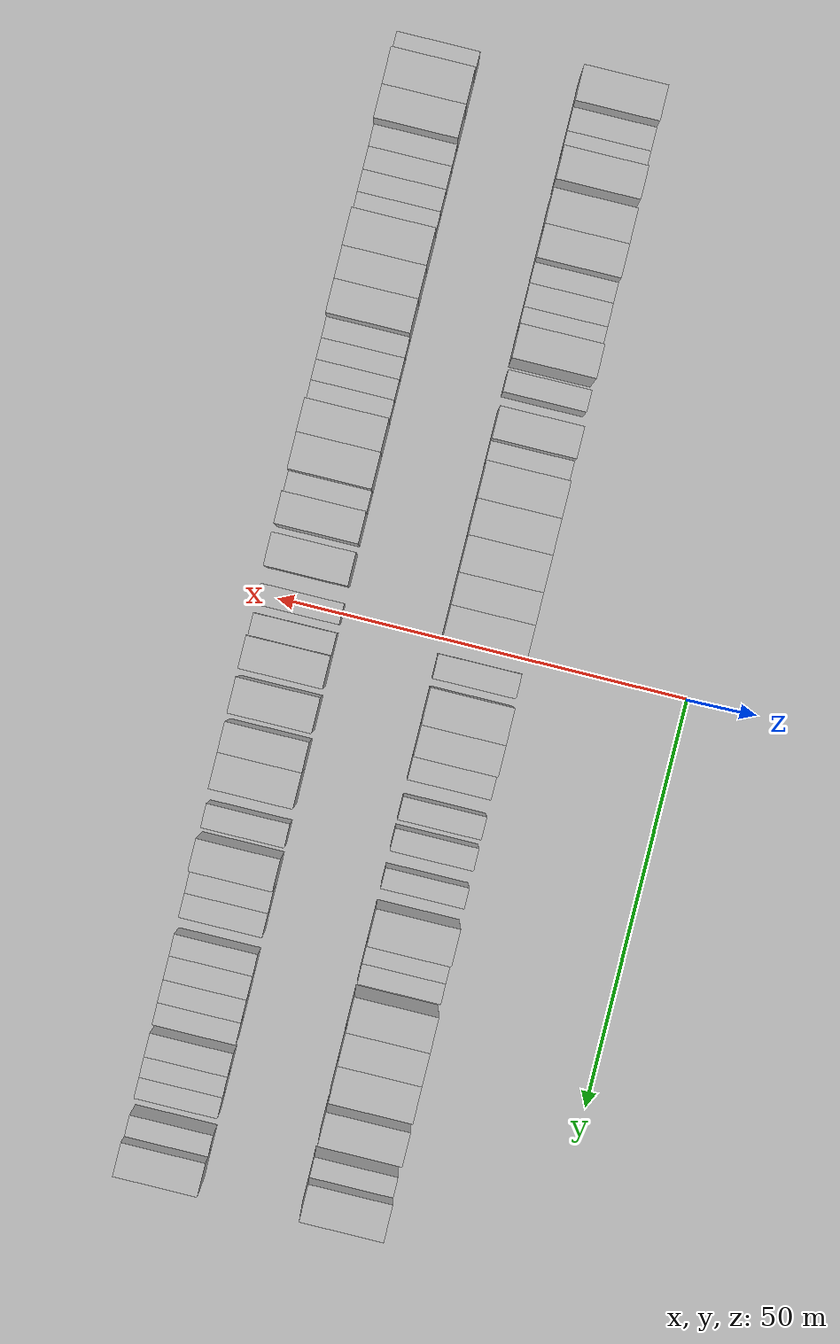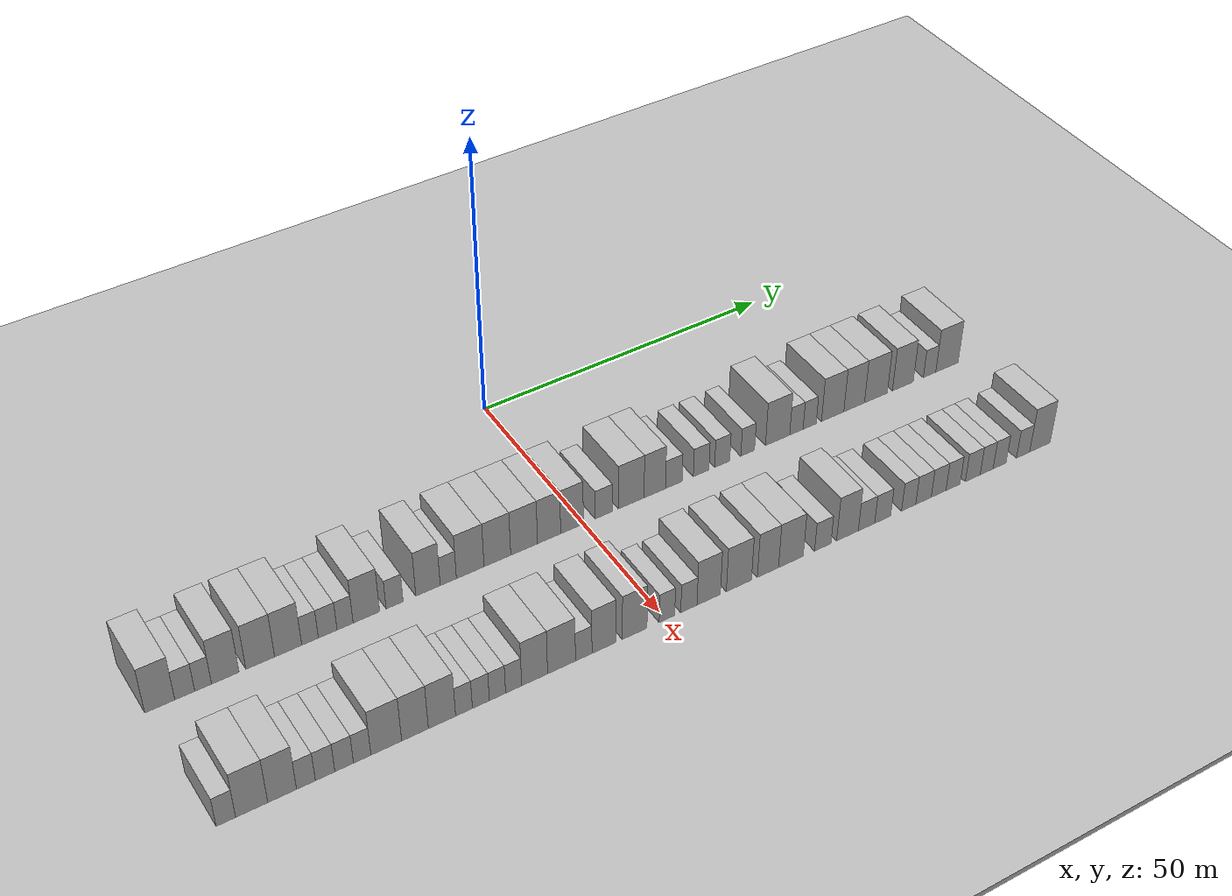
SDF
<sdf version="1.6">
 <world name="default">
  <include><name>ground_plane_1</name><uri>model://HANNAS_ground_plane</uri></include>
  <include>
   <name>ground_plane_2</name>
   <uri>model://HANNAS_ground_plane</uri>
   <pose>100 0 0  0 0 0</pose>
  </include>
  <model name="building_37">
   <static>1</static>
   <pose>25.0000 -65.7747 0 0.000000 0.000000 0.000000</pose>
   <link name="link">
    <pose>0 0 4.50 0 0 0</pose>
    <collision name="collision"><geometry><box><size>10.0000 4.2623 9.0000</size></box></geometry></collision>
    <visual name="visual">
     <cast_shadows>0</cast_shadows>
     <geometry><box><size>10.0000 4.2623 9.0000</size></box></geometry>
     <material>
      <script>
       <uri>model://HANNAS_wall/materials/scripts</uri>
       <uri>model://HANNAS_wall/materials/textures</uri>
       <name>vrc/HANNAS_wall</name>
      </script>
     </material>
    </visual>
   </link>
  </model>
  <model name="building_38">
   <static>1</static>
   <pose>25.0000 -62.2208 0 0.000000 0.000000 0.000000</pose>
   <link name="link">
    <pose>0 0 3.00 0 0 0</pose>
    <collision name="collision"><geometry><box><size>10.0000 2.8455 6.0000</size></box></geometry></collision>
    <visual name="visual">
     <cast_shadows>0</cast_shadows>
     <geometry><box><size>10.0000 2.8455 6.0000</size></box></geometry>
     <material>
      <script>
       <uri>model://HANNAS_wall/materials/scripts</uri>
       <uri>model://HANNAS_wall/materials/textures</uri>
       <name>vrc/HANNAS_wall</name>
      </script>
     </material>
    </visual>
   </link>
  </model>
  <model name="building_39">
   <static>1</static>
   <pose>25.0000 -59.5873 0 0.000000 0.000000 0.000000</pose>
   <link name="link">
    <pose>0 0 3.00 0 0 0</pose>
    <collision name="collision"><geometry><box><size>10.0000 2.4215 6.0000</size></box></geometry></collision>
    <visual name="visual">
     <cast_shadows>0</cast_shadows>
     <geometry><box><size>10.0000 2.4215 6.0000</size></box></geometry>
     <material>
      <script>
       <uri>model://HANNAS_wall/materials/scripts</uri>
       <uri>model://HANNAS_wall/materials/textures</uri>
       <name>vrc/HANNAS_wall</name>
      </script>
     </material>
    </visual>
   </link>
  </model>
  <model name="building_40">
   <static>1</static>
   <pose>25.0000 -56.3808 0 0.000000 0.000000 0.000000</pose>
   <link name="link">
    <pose>0 0 4.50 0 0 0</pose>
    <collision name="collision"><geometry><box><size>10.0000 3.9916 9.0000</size></box></geometry></collision>
    <visual name="visual">
     <cast_shadows>0</cast_shadows>
     <geometry><box><size>10.0000 3.9916 9.0000</size></box></geometry>
     <material>
      <script>
       <uri>model://HANNAS_wall/materials/scripts</uri>
       <uri>model://HANNAS_wall/materials/textures</uri>
       <name>vrc/HANNAS_wall</name>
      </script>
     </material>
    </visual>
   </link>
  </model>
  <model name="building_41">
   <static>1</static>
   <pose>25.0000 -51.2658 0 0.000000 0.000000 0.000000</pose>
   <link name="link">
    <pose>0 0 4.50 0 0 0</pose>
    <collision name="collision"><geometry><box><size>10.0000 4.2384 9.0000</size></box></geometry></collision>
    <visual name="visual">
     <cast_shadows>0</cast_shadows>
     <geometry><box><size>10.0000 4.2384 9.0000</size></box></geometry>
     <material>
      <script>
       <uri>model://HANNAS_wall/materials/scripts</uri>
       <uri>model://HANNAS_wall/materials/textures</uri>
       <name>vrc/HANNAS_wall</name>
      </script>
     </material>
    </visual>
   </link>
  </model>
  <model name="building_42">
   <static>1</static>
   <pose>25.0000 -47.1261 0 0.000000 0.000000 0.000000</pose>
   <link name="link">
    <pose>0 0 4.50 0 0 0</pose>
    <collision name="collision"><geometry><box><size>10.0000 4.0411 9.0000</size></box></geometry></collision>
    <visual name="visual">
     <cast_shadows>0</cast_shadows>
     <geometry><box><size>10.0000 4.0411 9.0000</size></box></geometry>
     <material>
      <script>
       <uri>model://HANNAS_wall/materials/scripts</uri>
       <uri>model://HANNAS_wall/materials/textures</uri>
       <name>vrc/HANNAS_wall</name>
      </script>
     </material>
    </visual>
   </link>
  </model>
  <model name="building_43">
   <static>1</static>
   <pose>25.0000 -43.8593 0 0.000000 0.000000 0.000000</pose>
   <link name="link">
    <pose>0 0 3.00 0 0 0</pose>
    <collision name="collision"><geometry><box><size>10.0000 2.4925 6.0000</size></box></geometry></collision>
    <visual name="visual">
     <cast_shadows>0</cast_shadows>
     <geometry><box><size>10.0000 2.4925 6.0000</size></box></geometry>
     <material>
      <script>
       <uri>model://HANNAS_wall/materials/scripts</uri>
       <uri>model://HANNAS_wall/materials/textures</uri>
       <name>vrc/HANNAS_wall</name>
      </script>
     </material>
    </visual>
   </link>
  </model>
  <model name="building_44">
   <static>1</static>
   <pose>25.0000 -41.1967 0 0.000000 0.000000 0.000000</pose>
   <link name="link">
    <pose>0 0 3.00 0 0 0</pose>
    <collision name="collision"><geometry><box><size>10.0000 2.8325 6.0000</size></box></geometry></collision>
    <visual name="visual">
     <cast_shadows>0</cast_shadows>
     <geometry><box><size>10.0000 2.8325 6.0000</size></box></geometry>
     <material>
      <script>
       <uri>model://HANNAS_wall/materials/scripts</uri>
       <uri>model://HANNAS_wall/materials/textures</uri>
       <name>vrc/HANNAS_wall</name>
      </script>
     </material>
    </visual>
   </link>
  </model>
  <model name="building_45">
   <static>1</static>
   <pose>25.0000 -38.5544 0 0.000000 0.000000 0.000000</pose>
   <link name="link">
    <pose>0 0 3.00 0 0 0</pose>
    <collision name="collision"><geometry><box><size>10.0000 2.4520 6.0000</size></box></geometry></collision>
    <visual name="visual">
     <cast_shadows>0</cast_shadows>
     <geometry><box><size>10.0000 2.4520 6.0000</size></box></geometry>
     <material>
      <script>
       <uri>model://HANNAS_wall/materials/scripts</uri>
       <uri>model://HANNAS_wall/materials/textures</uri>
       <name>vrc/HANNAS_wall</name>
      </script>
     </material>
    </visual>
   </link>
  </model>
  <model name="building_46">
   <static>1</static>
   <pose>25.0000 -35.2823 0 0.000000 0.000000 0.000000</pose>
   <link name="link">
    <pose>0 0 4.50 0 0 0</pose>
    <collision name="collision"><geometry><box><size>10.0000 4.0922 9.0000</size></box></geometry></collision>
    <visual name="visual">
     <cast_shadows>0</cast_shadows>
     <geometry><box><size>10.0000 4.0922 9.0000</size></box></geometry>
     <material>
      <script>
       <uri>model://HANNAS_wall/materials/scripts</uri>
       <uri>model://HANNAS_wall/materials/textures</uri>
       <name>vrc/HANNAS_wall</name>
      </script>
     </material>
    </visual>
   </link>
  </model>
  <model name="building_47">
   <static>1</static>
   <pose>25.0000 -30.9159 0 0.000000 0.000000 0.000000</pose>
   <link name="link">
    <pose>0 0 3.00 0 0 0</pose>
    <collision name="collision"><geometry><box><size>10.0000 2.6406 6.0000</size></box></geometry></collision>
    <visual name="visual">
     <cast_shadows>0</cast_shadows>
     <geometry><box><size>10.0000 2.6406 6.0000</size></box></geometry>
     <material>
      <script>
       <uri>model://HANNAS_wall/materials/scripts</uri>
       <uri>model://HANNAS_wall/materials/textures</uri>
       <name>vrc/HANNAS_wall</name>
      </script>
     </material>
    </visual>
   </link>
  </model>
  <model name="building_48">
   <static>1</static>
   <pose>25.0000 -25.6703 0 0.000000 0.000000 0.000000</pose>
   <link name="link">
    <pose>0 0 4.50 0 0 0</pose>
    <collision name="collision"><geometry><box><size>10.0000 3.8506 9.0000</size></box></geometry></collision>
    <visual name="visual">
     <cast_shadows>0</cast_shadows>
     <geometry><box><size>10.0000 3.8506 9.0000</size></box></geometry>
     <material>
      <script>
       <uri>model://HANNAS_wall/materials/scripts</uri>
       <uri>model://HANNAS_wall/materials/textures</uri>
       <name>vrc/HANNAS_wall</name>
      </script>
     </material>
    </visual>
   </link>
  </model>
  <model name="building_49">
   <static>1</static>
   <pose>25.0000 -22.4539 0 0.000000 0.000000 0.000000</pose>
   <link name="link">
    <pose>0 0 3.00 0 0 0</pose>
    <collision name="collision"><geometry><box><size>10.0000 2.5822 6.0000</size></box></geometry></collision>
    <visual name="visual">
     <cast_shadows>0</cast_shadows>
     <geometry><box><size>10.0000 2.5822 6.0000</size></box></geometry>
     <material>
      <script>
       <uri>model://HANNAS_wall/materials/scripts</uri>
       <uri>model://HANNAS_wall/materials/textures</uri>
       <name>vrc/HANNAS_wall</name>
      </script>
     </material>
    </visual>
   </link>
  </model>
  <model name="building_50">
   <static>1</static>
   <pose>25.0000 -18.9364 0 0.000000 0.000000 0.000000</pose>
   <link name="link">
    <pose>0 0 4.50 0 0 0</pose>
    <collision name="collision"><geometry><box><size>10.0000 4.4528 9.0000</size></box></geometry></collision>
    <visual name="visual">
     <cast_shadows>0</cast_shadows>
     <geometry><box><size>10.0000 4.4528 9.0000</size></box></geometry>
     <material>
      <script>
       <uri>model://HANNAS_wall/materials/scripts</uri>
       <uri>model://HANNAS_wall/materials/textures</uri>
       <name>vrc/HANNAS_wall</name>
      </script>
     </material>
    </visual>
   </link>
  </model>
  <model name="building_51">
   <static>1</static>
   <pose>25.0000 -14.5381 0 0.000000 0.000000 0.000000</pose>
   <link name="link">
    <pose>0 0 4.50 0 0 0</pose>
    <collision name="collision"><geometry><box><size>10.0000 4.3439 9.0000</size></box></geometry></collision>
    <visual name="visual">
     <cast_shadows>0</cast_shadows>
     <geometry><box><size>10.0000 4.3439 9.0000</size></box></geometry>
     <material>
      <script>
       <uri>model://HANNAS_wall/materials/scripts</uri>
       <uri>model://HANNAS_wall/materials/textures</uri>
       <name>vrc/HANNAS_wall</name>
      </script>
     </material>
    </visual>
   </link>
  </model>
  <model name="building_52">
   <static>1</static>
   <pose>25.0000 -10.1590 0 0.000000 0.000000 0.000000</pose>
   <link name="link">
    <pose>0 0 4.50 0 0 0</pose>
    <collision name="collision"><geometry><box><size>10.0000 4.4143 9.0000</size></box></geometry></collision>
    <visual name="visual">
     <cast_shadows>0</cast_shadows>
     <geometry><box><size>10.0000 4.4143 9.0000</size></box></geometry>
     <material>
      <script>
       <uri>model://HANNAS_wall/materials/scripts</uri>
       <uri>model://HANNAS_wall/materials/textures</uri>
       <name>vrc/HANNAS_wall</name>
      </script>
     </material>
    </visual>
   </link>
  </model>
  <model name="building_53">
   <static>1</static>
   <pose>25.0000 -6.0237 0 0.000000 0.000000 0.000000</pose>
   <link name="link">
    <pose>0 0 4.50 0 0 0</pose>
    <collision name="collision"><geometry><box><size>10.0000 3.8564 9.0000</size></box></geometry></collision>
    <visual name="visual">
     <cast_shadows>0</cast_shadows>
     <geometry><box><size>10.0000 3.8564 9.0000</size></box></geometry>
     <material>
      <script>
       <uri>model://HANNAS_wall/materials/scripts</uri>
       <uri>model://HANNAS_wall/materials/textures</uri>
       <name>vrc/HANNAS_wall</name>
      </script>
     </material>
    </visual>
   </link>
  </model>
  <model name="building_54">
   <static>1</static>
   <pose>25.0000 -2.1861 0 0.000000 0.000000 0.000000</pose>
   <link name="link">
    <pose>0 0 4.50 0 0 0</pose>
    <collision name="collision"><geometry><box><size>10.0000 3.8187 9.0000</size></box></geometry></collision>
    <visual name="visual">
     <cast_shadows>0</cast_shadows>
     <geometry><box><size>10.0000 3.8187 9.0000</size></box></geometry>
     <material>
      <script>
       <uri>model://HANNAS_wall/materials/scripts</uri>
       <uri>model://HANNAS_wall/materials/textures</uri>
       <name>vrc/HANNAS_wall</name>
      </script>
     </material>
    </visual>
   </link>
  </model>
  <model name="building_55">
   <static>1</static>
   <pose>25.0000 3.2048 0 0.000000 0.000000 0.000000</pose>
   <link name="link">
    <pose>0 0 3.00 0 0 0</pose>
    <collision name="collision"><geometry><box><size>10.0000 2.9631 6.0000</size></box></geometry></collision>
    <visual name="visual">
     <cast_shadows>0</cast_shadows>
     <geometry><box><size>10.0000 2.9631 6.0000</size></box></geometry>
     <material>
      <script>
       <uri>model://HANNAS_wall/materials/scripts</uri>
       <uri>model://HANNAS_wall/materials/textures</uri>
       <name>vrc/HANNAS_wall</name>
      </script>
     </material>
    </visual>
   </link>
  </model>
  <model name="building_56">
   <static>1</static>
   <pose>25.0000 7.9016 0 0.000000 0.000000 0.000000</pose>
   <link name="link">
    <pose>0 0 4.50 0 0 0</pose>
    <collision name="collision"><geometry><box><size>10.0000 4.4305 9.0000</size></box></geometry></collision>
    <visual name="visual">
     <cast_shadows>0</cast_shadows>
     <geometry><box><size>10.0000 4.4305 9.0000</size></box></geometry>
     <material>
      <script>
       <uri>model://HANNAS_wall/materials/scripts</uri>
       <uri>model://HANNAS_wall/materials/textures</uri>
       <name>vrc/HANNAS_wall</name>
      </script>
     </material>
    </visual>
   </link>
  </model>
  <model name="building_57">
   <static>1</static>
   <pose>25.0000 11.9886 0 0.000000 0.000000 0.000000</pose>
   <link name="link">
    <pose>0 0 4.50 0 0 0</pose>
    <collision name="collision"><geometry><box><size>10.0000 3.7435 9.0000</size></box></geometry></collision>
    <visual name="visual">
     <cast_shadows>0</cast_shadows>
     <geometry><box><size>10.0000 3.7435 9.0000</size></box></geometry>
     <material>
      <script>
       <uri>model://HANNAS_wall/materials/scripts</uri>
       <uri>model://HANNAS_wall/materials/textures</uri>
       <name>vrc/HANNAS_wall</name>
      </script>
     </material>
    </visual>
   </link>
  </model>
  <model name="building_58">
   <static>1</static>
   <pose>25.0000 15.3218 0 0.000000 0.000000 0.000000</pose>
   <link name="link">
    <pose>0 0 3.00 0 0 0</pose>
    <collision name="collision"><geometry><box><size>10.0000 2.9228 6.0000</size></box></geometry></collision>
    <visual name="visual">
     <cast_shadows>0</cast_shadows>
     <geometry><box><size>10.0000 2.9228 6.0000</size></box></geometry>
     <material>
      <script>
       <uri>model://HANNAS_wall/materials/scripts</uri>
       <uri>model://HANNAS_wall/materials/textures</uri>
       <name>vrc/HANNAS_wall</name>
      </script>
     </material>
    </visual>
   </link>
  </model>
  <model name="building_59">
   <static>1</static>
   <pose>25.0000 20.1744 0 0.000000 0.000000 0.000000</pose>
   <link name="link">
    <pose>0 0 3.00 0 0 0</pose>
    <collision name="collision"><geometry><box><size>10.0000 2.7824 6.0000</size></box></geometry></collision>
    <visual name="visual">
     <cast_shadows>0</cast_shadows>
     <geometry><box><size>10.0000 2.7824 6.0000</size></box></geometry>
     <material>
      <script>
       <uri>model://HANNAS_wall/materials/scripts</uri>
       <uri>model://HANNAS_wall/materials/textures</uri>
       <name>vrc/HANNAS_wall</name>
      </script>
     </material>
    </visual>
   </link>
  </model>
  <model name="building_60">
   <static>1</static>
   <pose>25.0000 23.9321 0 0.000000 0.000000 0.000000</pose>
   <link name="link">
    <pose>0 0 3.00 0 0 0</pose>
    <collision name="collision"><geometry><box><size>10.0000 2.7331 6.0000</size></box></geometry></collision>
    <visual name="visual">
     <cast_shadows>0</cast_shadows>
     <geometry><box><size>10.0000 2.7331 6.0000</size></box></geometry>
     <material>
      <script>
       <uri>model://HANNAS_wall/materials/scripts</uri>
       <uri>model://HANNAS_wall/materials/textures</uri>
       <name>vrc/HANNAS_wall</name>
      </script>
     </material>
    </visual>
   </link>
  </model>
  <model name="building_61">
   <static>1</static>
   <pose>25.0000 28.5490 0 0.000000 0.000000 0.000000</pose>
   <link name="link">
    <pose>0 0 3.00 0 0 0</pose>
    <collision name="collision"><geometry><box><size>10.0000 2.5007 6.0000</size></box></geometry></collision>
    <visual name="visual">
     <cast_shadows>0</cast_shadows>
     <geometry><box><size>10.0000 2.5007 6.0000</size></box></geometry>
     <material>
      <script>
       <uri>model://HANNAS_wall/materials/scripts</uri>
       <uri>model://HANNAS_wall/materials/textures</uri>
       <name>vrc/HANNAS_wall</name>
      </script>
     </material>
    </visual>
   </link>
  </model>
  <model name="building_62">
   <static>1</static>
   <pose>25.0000 34.0377 0 0.000000 0.000000 0.000000</pose>
   <link name="link">
    <pose>0 0 4.50 0 0 0</pose>
    <collision name="collision"><geometry><box><size>10.0000 4.4766 9.0000</size></box></geometry></collision>
    <visual name="visual">
     <cast_shadows>0</cast_shadows>
     <geometry><box><size>10.0000 4.4766 9.0000</size></box></geometry>
     <material>
      <script>
       <uri>model://HANNAS_wall/materials/scripts</uri>
       <uri>model://HANNAS_wall/materials/textures</uri>
       <name>vrc/HANNAS_wall</name>
      </script>
     </material>
    </visual>
   </link>
  </model>
  <model name="building_63">
   <static>1</static>
   <pose>25.0000 37.5233 0 0.000000 0.000000 0.000000</pose>
   <link name="link">
    <pose>0 0 3.00 0 0 0</pose>
    <collision name="collision"><geometry><box><size>10.0000 2.4945 6.0000</size></box></geometry></collision>
    <visual name="visual">
     <cast_shadows>0</cast_shadows>
     <geometry><box><size>10.0000 2.4945 6.0000</size></box></geometry>
     <material>
      <script>
       <uri>model://HANNAS_wall/materials/scripts</uri>
       <uri>model://HANNAS_wall/materials/textures</uri>
       <name>vrc/HANNAS_wall</name>
      </script>
     </material>
    </visual>
   </link>
  </model>
  <model name="building_64">
   <static>1</static>
   <pose>25.0000 39.9988 0 0.000000 0.000000 0.000000</pose>
   <link name="link">
    <pose>0 0 3.00 0 0 0</pose>
    <collision name="collision"><geometry><box><size>10.0000 2.4566 6.0000</size></box></geometry></collision>
    <visual name="visual">
     <cast_shadows>0</cast_shadows>
     <geometry><box><size>10.0000 2.4566 6.0000</size></box></geometry>
     <material>
      <script>
       <uri>model://HANNAS_wall/materials/scripts</uri>
       <uri>model://HANNAS_wall/materials/textures</uri>
       <name>vrc/HANNAS_wall</name>
      </script>
     </material>
    </visual>
   </link>
  </model>
  <model name="building_65">
   <static>1</static>
   <pose>25.0000 44.3434 0 0.000000 0.000000 0.000000</pose>
   <link name="link">
    <pose>0 0 4.50 0 0 0</pose>
    <collision name="collision"><geometry><box><size>10.0000 4.2325 9.0000</size></box></geometry></collision>
    <visual name="visual">
     <cast_shadows>0</cast_shadows>
     <geometry><box><size>10.0000 4.2325 9.0000</size></box></geometry>
     <material>
      <script>
       <uri>model://HANNAS_wall/materials/scripts</uri>
       <uri>model://HANNAS_wall/materials/textures</uri>
       <name>vrc/HANNAS_wall</name>
      </script>
     </material>
    </visual>
   </link>
  </model>
  <model name="building_66">
   <static>1</static>
   <pose>25.0000 48.4290 0 0.000000 0.000000 0.000000</pose>
   <link name="link">
    <pose>0 0 4.50 0 0 0</pose>
    <collision name="collision"><geometry><box><size>10.0000 3.9387 9.0000</size></box></geometry></collision>
    <visual name="visual">
     <cast_shadows>0</cast_shadows>
     <geometry><box><size>10.0000 3.9387 9.0000</size></box></geometry>
     <material>
      <script>
       <uri>model://HANNAS_wall/materials/scripts</uri>
       <uri>model://HANNAS_wall/materials/textures</uri>
       <name>vrc/HANNAS_wall</name>
      </script>
     </material>
    </visual>
   </link>
  </model>
  <model name="building_67">
   <static>1</static>
   <pose>25.0000 52.6064 0 0.000000 0.000000 0.000000</pose>
   <link name="link">
    <pose>0 0 4.50 0 0 0</pose>
    <collision name="collision"><geometry><box><size>10.0000 4.4161 9.0000</size></box></geometry></collision>
    <visual name="visual">
     <cast_shadows>0</cast_shadows>
     <geometry><box><size>10.0000 4.4161 9.0000</size></box></geometry>
     <material>
      <script>
       <uri>model://HANNAS_wall/materials/scripts</uri>
       <uri>model://HANNAS_wall/materials/textures</uri>
       <name>vrc/HANNAS_wall</name>
      </script>
     </material>
    </visual>
   </link>
  </model>
  <model name="building_68">
   <static>1</static>
   <pose>25.0000 57.8478 0 0.000000 0.000000 0.000000</pose>
   <link name="link">
    <pose>0 0 4.50 0 0 0</pose>
    <collision name="collision"><geometry><box><size>10.0000 4.0667 9.0000</size></box></geometry></collision>
    <visual name="visual">
     <cast_shadows>0</cast_shadows>
     <geometry><box><size>10.0000 4.0667 9.0000</size></box></geometry>
     <material>
      <script>
       <uri>model://HANNAS_wall/materials/scripts</uri>
       <uri>model://HANNAS_wall/materials/textures</uri>
       <name>vrc/HANNAS_wall</name>
      </script>
     </material>
    </visual>
   </link>
  </model>
  <model name="building_69">
   <static>1</static>
   <pose>25.0000 63.1068 0 0.000000 0.000000 0.000000</pose>
   <link name="link">
    <pose>0 0 3.00 0 0 0</pose>
    <collision name="collision"><geometry><box><size>10.0000 2.4513 6.0000</size></box></geometry></collision>
    <visual name="visual">
     <cast_shadows>0</cast_shadows>
     <geometry><box><size>10.0000 2.4513 6.0000</size></box></geometry>
     <material>
      <script>
       <uri>model://HANNAS_wall/materials/scripts</uri>
       <uri>model://HANNAS_wall/materials/textures</uri>
       <name>vrc/HANNAS_wall</name>
      </script>
     </material>
    </visual>
   </link>
  </model>
  <model name="building_70">
   <static>1</static>
   <pose>25.0000 66.5663 0 0.000000 0.000000 0.000000</pose>
   <link name="link">
    <pose>0 0 4.50 0 0 0</pose>
    <collision name="collision"><geometry><box><size>10.0000 4.4678 9.0000</size></box></geometry></collision>
    <visual name="visual">
     <cast_shadows>0</cast_shadows>
     <geometry><box><size>10.0000 4.4678 9.0000</size></box></geometry>
     <material>
      <script>
       <uri>model://HANNAS_wall/materials/scripts</uri>
       <uri>model://HANNAS_wall/materials/textures</uri>
       <name>vrc/HANNAS_wall</name>
      </script>
     </material>
    </visual>
   </link>
  </model>
  <model name="building_141">
   <static>1</static>
   <pose>47.0000 -65.9440 0 0.000000 0.000000 0.000000</pose>
   <link name="link">
    <pose>0 0 3.00 0 0 0</pose>
    <collision name="collision"><geometry><box><size>10.0000 2.6566 6.0000</size></box></geometry></collision>
    <visual name="visual">
     <cast_shadows>0</cast_shadows>
     <geometry><box><size>10.0000 2.6566 6.0000</size></box></geometry>
     <material>
      <script>
       <uri>model://HANNAS_wall/materials/scripts</uri>
       <uri>model://HANNAS_wall/materials/textures</uri>
       <name>vrc/HANNAS_wall</name>
      </script>
     </material>
    </visual>
   </link>
  </model>
  <model name="building_142">
   <static>1</static>
   <pose>47.0000 -62.4051 0 0.000000 0.000000 0.000000</pose>
   <link name="link">
    <pose>0 0 4.50 0 0 0</pose>
    <collision name="collision"><geometry><box><size>10.0000 4.4213 9.0000</size></box></geometry></collision>
    <visual name="visual">
     <cast_shadows>0</cast_shadows>
     <geometry><box><size>10.0000 4.4213 9.0000</size></box></geometry>
     <material>
      <script>
       <uri>model://HANNAS_wall/materials/scripts</uri>
       <uri>model://HANNAS_wall/materials/textures</uri>
       <name>vrc/HANNAS_wall</name>
      </script>
     </material>
    </visual>
   </link>
  </model>
  <model name="building_143">
   <static>1</static>
   <pose>47.0000 -58.1869 0 0.000000 0.000000 0.000000</pose>
   <link name="link">
    <pose>0 0 4.50 0 0 0</pose>
    <collision name="collision"><geometry><box><size>10.0000 4.0150 9.0000</size></box></geometry></collision>
    <visual name="visual">
     <cast_shadows>0</cast_shadows>
     <geometry><box><size>10.0000 4.0150 9.0000</size></box></geometry>
     <material>
      <script>
       <uri>model://HANNAS_wall/materials/scripts</uri>
       <uri>model://HANNAS_wall/materials/textures</uri>
       <name>vrc/HANNAS_wall</name>
      </script>
     </material>
    </visual>
   </link>
  </model>
  <model name="building_144">
   <static>1</static>
   <pose>47.0000 -54.8597 0 0.000000 0.000000 0.000000</pose>
   <link name="link">
    <pose>0 0 3.00 0 0 0</pose>
    <collision name="collision"><geometry><box><size>10.0000 2.6394 6.0000</size></box></geometry></collision>
    <visual name="visual">
     <cast_shadows>0</cast_shadows>
     <geometry><box><size>10.0000 2.6394 6.0000</size></box></geometry>
     <material>
      <script>
       <uri>model://HANNAS_wall/materials/scripts</uri>
       <uri>model://HANNAS_wall/materials/textures</uri>
       <name>vrc/HANNAS_wall</name>
      </script>
     </material>
    </visual>
   </link>
  </model>
  <model name="building_145">
   <static>1</static>
   <pose>47.0000 -52.1606 0 0.000000 0.000000 0.000000</pose>
   <link name="link">
    <pose>0 0 3.00 0 0 0</pose>
    <collision name="collision"><geometry><box><size>10.0000 2.7588 6.0000</size></box></geometry></collision>
    <visual name="visual">
     <cast_shadows>0</cast_shadows>
     <geometry><box><size>10.0000 2.7588 6.0000</size></box></geometry>
     <material>
      <script>
       <uri>model://HANNAS_wall/materials/scripts</uri>
       <uri>model://HANNAS_wall/materials/textures</uri>
       <name>vrc/HANNAS_wall</name>
      </script>
     </material>
    </visual>
   </link>
  </model>
  <model name="building_146">
   <static>1</static>
   <pose>47.0000 -49.4505 0 0.000000 0.000000 0.000000</pose>
   <link name="link">
    <pose>0 0 3.00 0 0 0</pose>
    <collision name="collision"><geometry><box><size>10.0000 2.6615 6.0000</size></box></geometry></collision>
    <visual name="visual">
     <cast_shadows>0</cast_shadows>
     <geometry><box><size>10.0000 2.6615 6.0000</size></box></geometry>
     <material>
      <script>
       <uri>model://HANNAS_wall/materials/scripts</uri>
       <uri>model://HANNAS_wall/materials/textures</uri>
       <name>vrc/HANNAS_wall</name>
      </script>
     </material>
    </visual>
   </link>
  </model>
  <model name="building_147">
   <static>1</static>
   <pose>47.0000 -46.8689 0 0.000000 0.000000 0.000000</pose>
   <link name="link">
    <pose>0 0 3.00 0 0 0</pose>
    <collision name="collision"><geometry><box><size>10.0000 2.5017 6.0000</size></box></geometry></collision>
    <visual name="visual">
     <cast_shadows>0</cast_shadows>
     <geometry><box><size>10.0000 2.5017 6.0000</size></box></geometry>
     <material>
      <script>
       <uri>model://HANNAS_wall/materials/scripts</uri>
       <uri>model://HANNAS_wall/materials/textures</uri>
       <name>vrc/HANNAS_wall</name>
      </script>
     </material>
    </visual>
   </link>
  </model>
  <model name="building_148">
   <static>1</static>
   <pose>47.0000 -43.3859 0 0.000000 0.000000 0.000000</pose>
   <link name="link">
    <pose>0 0 4.50 0 0 0</pose>
    <collision name="collision"><geometry><box><size>10.0000 4.4643 9.0000</size></box></geometry></collision>
    <visual name="visual">
     <cast_shadows>0</cast_shadows>
     <geometry><box><size>10.0000 4.4643 9.0000</size></box></geometry>
     <material>
      <script>
       <uri>model://HANNAS_wall/materials/scripts</uri>
       <uri>model://HANNAS_wall/materials/textures</uri>
       <name>vrc/HANNAS_wall</name>
      </script>
     </material>
    </visual>
   </link>
  </model>
  <model name="building_149">
   <static>1</static>
   <pose>47.0000 -39.1868 0 0.000000 0.000000 0.000000</pose>
   <link name="link">
    <pose>0 0 4.50 0 0 0</pose>
    <collision name="collision"><geometry><box><size>10.0000 3.9339 9.0000</size></box></geometry></collision>
    <visual name="visual">
     <cast_shadows>0</cast_shadows>
     <geometry><box><size>10.0000 3.9339 9.0000</size></box></geometry>
     <material>
      <script>
       <uri>model://HANNAS_wall/materials/scripts</uri>
       <uri>model://HANNAS_wall/materials/textures</uri>
       <name>vrc/HANNAS_wall</name>
      </script>
     </material>
    </visual>
   </link>
  </model>
  <model name="building_150">
   <static>1</static>
   <pose>47.0000 -35.1917 0 0.000000 0.000000 0.000000</pose>
   <link name="link">
    <pose>0 0 4.50 0 0 0</pose>
    <collision name="collision"><geometry><box><size>10.0000 4.0563 9.0000</size></box></geometry></collision>
    <visual name="visual">
     <cast_shadows>0</cast_shadows>
     <geometry><box><size>10.0000 4.0563 9.0000</size></box></geometry>
     <material>
      <script>
       <uri>model://HANNAS_wall/materials/scripts</uri>
       <uri>model://HANNAS_wall/materials/textures</uri>
       <name>vrc/HANNAS_wall</name>
      </script>
     </material>
    </visual>
   </link>
  </model>
  <model name="building_151">
   <static>1</static>
   <pose>47.0000 -31.9050 0 0.000000 0.000000 0.000000</pose>
   <link name="link">
    <pose>0 0 3.00 0 0 0</pose>
    <collision name="collision"><geometry><box><size>10.0000 2.5171 6.0000</size></box></geometry></collision>
    <visual name="visual">
     <cast_shadows>0</cast_shadows>
     <geometry><box><size>10.0000 2.5171 6.0000</size></box></geometry>
     <material>
      <script>
       <uri>model://HANNAS_wall/materials/scripts</uri>
       <uri>model://HANNAS_wall/materials/textures</uri>
       <name>vrc/HANNAS_wall</name>
      </script>
     </material>
    </visual>
   </link>
  </model>
  <model name="building_152">
   <static>1</static>
   <pose>47.0000 -29.3613 0 0.000000 0.000000 0.000000</pose>
   <link name="link">
    <pose>0 0 3.00 0 0 0</pose>
    <collision name="collision"><geometry><box><size>10.0000 2.5703 6.0000</size></box></geometry></collision>
    <visual name="visual">
     <cast_shadows>0</cast_shadows>
     <geometry><box><size>10.0000 2.5703 6.0000</size></box></geometry>
     <material>
      <script>
       <uri>model://HANNAS_wall/materials/scripts</uri>
       <uri>model://HANNAS_wall/materials/textures</uri>
       <name>vrc/HANNAS_wall</name>
      </script>
     </material>
    </visual>
   </link>
  </model>
  <model name="building_153">
   <static>1</static>
   <pose>47.0000 -26.8422 0 0.000000 0.000000 0.000000</pose>
   <link name="link">
    <pose>0 0 3.00 0 0 0</pose>
    <collision name="collision"><geometry><box><size>10.0000 2.4678 6.0000</size></box></geometry></collision>
    <visual name="visual">
     <cast_shadows>0</cast_shadows>
     <geometry><box><size>10.0000 2.4678 6.0000</size></box></geometry>
     <material>
      <script>
       <uri>model://HANNAS_wall/materials/scripts</uri>
       <uri>model://HANNAS_wall/materials/textures</uri>
       <name>vrc/HANNAS_wall</name>
      </script>
     </material>
    </visual>
   </link>
  </model>
  <model name="building_154">
   <static>1</static>
   <pose>47.0000 -24.3699 0 0.000000 0.000000 0.000000</pose>
   <link name="link">
    <pose>0 0 3.00 0 0 0</pose>
    <collision name="collision"><geometry><box><size>10.0000 2.4768 6.0000</size></box></geometry></collision>
    <visual name="visual">
     <cast_shadows>0</cast_shadows>
     <geometry><box><size>10.0000 2.4768 6.0000</size></box></geometry>
     <material>
      <script>
       <uri>model://HANNAS_wall/materials/scripts</uri>
       <uri>model://HANNAS_wall/materials/textures</uri>
       <name>vrc/HANNAS_wall</name>
      </script>
     </material>
    </visual>
   </link>
  </model>
  <model name="building_155">
   <static>1</static>
   <pose>47.0000 -21.1266 0 0.000000 0.000000 0.000000</pose>
   <link name="link">
    <pose>0 0 4.50 0 0 0</pose>
    <collision name="collision"><geometry><box><size>10.0000 4.0099 9.0000</size></box></geometry></collision>
    <visual name="visual">
     <cast_shadows>0</cast_shadows>
     <geometry><box><size>10.0000 4.0099 9.0000</size></box></geometry>
     <material>
      <script>
       <uri>model://HANNAS_wall/materials/scripts</uri>
       <uri>model://HANNAS_wall/materials/textures</uri>
       <name>vrc/HANNAS_wall</name>
      </script>
     </material>
    </visual>
   </link>
  </model>
  <model name="building_156">
   <static>1</static>
   <pose>47.0000 -16.9347 0 0.000000 0.000000 0.000000</pose>
   <link name="link">
    <pose>0 0 4.50 0 0 0</pose>
    <collision name="collision"><geometry><box><size>10.0000 4.3739 9.0000</size></box></geometry></collision>
    <visual name="visual">
     <cast_shadows>0</cast_shadows>
     <geometry><box><size>10.0000 4.3739 9.0000</size></box></geometry>
     <material>
      <script>
       <uri>model://HANNAS_wall/materials/scripts</uri>
       <uri>model://HANNAS_wall/materials/textures</uri>
       <name>vrc/HANNAS_wall</name>
      </script>
     </material>
    </visual>
   </link>
  </model>
  <model name="building_157">
   <static>1</static>
   <pose>47.0000 -13.4437 0 0.000000 0.000000 0.000000</pose>
   <link name="link">
    <pose>0 0 3.00 0 0 0</pose>
    <collision name="collision"><geometry><box><size>10.0000 2.6081 6.0000</size></box></geometry></collision>
    <visual name="visual">
     <cast_shadows>0</cast_shadows>
     <geometry><box><size>10.0000 2.6081 6.0000</size></box></geometry>
     <material>
      <script>
       <uri>model://HANNAS_wall/materials/scripts</uri>
       <uri>model://HANNAS_wall/materials/textures</uri>
       <name>vrc/HANNAS_wall</name>
      </script>
     </material>
    </visual>
   </link>
  </model>
  <model name="building_158">
   <static>1</static>
   <pose>47.0000 -10.2152 0 0.000000 0.000000 0.000000</pose>
   <link name="link">
    <pose>0 0 4.50 0 0 0</pose>
    <collision name="collision"><geometry><box><size>10.0000 3.8488 9.0000</size></box></geometry></collision>
    <visual name="visual">
     <cast_shadows>0</cast_shadows>
     <geometry><box><size>10.0000 3.8488 9.0000</size></box></geometry>
     <material>
      <script>
       <uri>model://HANNAS_wall/materials/scripts</uri>
       <uri>model://HANNAS_wall/materials/textures</uri>
       <name>vrc/HANNAS_wall</name>
      </script>
     </material>
    </visual>
   </link>
  </model>
  <model name="building_159">
   <static>1</static>
   <pose>47.0000 -5.2955 0 0.000000 0.000000 0.000000</pose>
   <link name="link">
    <pose>0 0 4.50 0 0 0</pose>
    <collision name="collision"><geometry><box><size>10.0000 3.9905 9.0000</size></box></geometry></collision>
    <visual name="visual">
     <cast_shadows>0</cast_shadows>
     <geometry><box><size>10.0000 3.9905 9.0000</size></box></geometry>
     <material>
      <script>
       <uri>model://HANNAS_wall/materials/scripts</uri>
       <uri>model://HANNAS_wall/materials/textures</uri>
       <name>vrc/HANNAS_wall</name>
      </script>
     </material>
    </visual>
   </link>
  </model>
  <model name="building_160">
   <static>1</static>
   <pose>47.0000 -0.0286 0 0.000000 0.000000 0.000000</pose>
   <link name="link">
    <pose>0 0 3.00 0 0 0</pose>
    <collision name="collision"><geometry><box><size>10.0000 2.5433 6.0000</size></box></geometry></collision>
    <visual name="visual">
     <cast_shadows>0</cast_shadows>
     <geometry><box><size>10.0000 2.5433 6.0000</size></box></geometry>
     <material>
      <script>
       <uri>model://HANNAS_wall/materials/scripts</uri>
       <uri>model://HANNAS_wall/materials/textures</uri>
       <name>vrc/HANNAS_wall</name>
      </script>
     </material>
    </visual>
   </link>
  </model>
  <model name="building_161">
   <static>1</static>
   <pose>47.0000 3.5879 0 0.000000 0.000000 0.000000</pose>
   <link name="link">
    <pose>0 0 3.00 0 0 0</pose>
    <collision name="collision"><geometry><box><size>10.0000 2.6896 6.0000</size></box></geometry></collision>
    <visual name="visual">
     <cast_shadows>0</cast_shadows>
     <geometry><box><size>10.0000 2.6896 6.0000</size></box></geometry>
     <material>
      <script>
       <uri>model://HANNAS_wall/materials/scripts</uri>
       <uri>model://HANNAS_wall/materials/textures</uri>
       <name>vrc/HANNAS_wall</name>
      </script>
     </material>
    </visual>
   </link>
  </model>
  <model name="building_162">
   <static>1</static>
   <pose>47.0000 6.8904 0 0.000000 0.000000 0.000000</pose>
   <link name="link">
    <pose>0 0 4.50 0 0 0</pose>
    <collision name="collision"><geometry><box><size>10.0000 3.9154 9.0000</size></box></geometry></collision>
    <visual name="visual">
     <cast_shadows>0</cast_shadows>
     <geometry><box><size>10.0000 3.9154 9.0000</size></box></geometry>
     <material>
      <script>
       <uri>model://HANNAS_wall/materials/scripts</uri>
       <uri>model://HANNAS_wall/materials/textures</uri>
       <name>vrc/HANNAS_wall</name>
      </script>
     </material>
    </visual>
   </link>
  </model>
  <model name="building_163">
   <static>1</static>
   <pose>47.0000 11.9839 0 0.000000 0.000000 0.000000</pose>
   <link name="link">
    <pose>0 0 4.50 0 0 0</pose>
    <collision name="collision"><geometry><box><size>10.0000 4.2717 9.0000</size></box></geometry></collision>
    <visual name="visual">
     <cast_shadows>0</cast_shadows>
     <geometry><box><size>10.0000 4.2717 9.0000</size></box></geometry>
     <material>
      <script>
       <uri>model://HANNAS_wall/materials/scripts</uri>
       <uri>model://HANNAS_wall/materials/textures</uri>
       <name>vrc/HANNAS_wall</name>
      </script>
     </material>
    </visual>
   </link>
  </model>
  <model name="building_164">
   <static>1</static>
   <pose>47.0000 16.9417 0 0.000000 0.000000 0.000000</pose>
   <link name="link">
    <pose>0 0 4.50 0 0 0</pose>
    <collision name="collision"><geometry><box><size>10.0000 3.6439 9.0000</size></box></geometry></collision>
    <visual name="visual">
     <cast_shadows>0</cast_shadows>
     <geometry><box><size>10.0000 3.6439 9.0000</size></box></geometry>
     <material>
      <script>
       <uri>model://HANNAS_wall/materials/scripts</uri>
       <uri>model://HANNAS_wall/materials/textures</uri>
       <name>vrc/HANNAS_wall</name>
      </script>
     </material>
    </visual>
   </link>
  </model>
  <model name="building_165">
   <static>1</static>
   <pose>47.0000 20.9096 0 0.000000 0.000000 0.000000</pose>
   <link name="link">
    <pose>0 0 4.50 0 0 0</pose>
    <collision name="collision"><geometry><box><size>10.0000 4.2919 9.0000</size></box></geometry></collision>
    <visual name="visual">
     <cast_shadows>0</cast_shadows>
     <geometry><box><size>10.0000 4.2919 9.0000</size></box></geometry>
     <material>
      <script>
       <uri>model://HANNAS_wall/materials/scripts</uri>
       <uri>model://HANNAS_wall/materials/textures</uri>
       <name>vrc/HANNAS_wall</name>
      </script>
     </material>
    </visual>
   </link>
  </model>
  <model name="building_166">
   <static>1</static>
   <pose>47.0000 26.4966 0 0.000000 0.000000 0.000000</pose>
   <link name="link">
    <pose>0 0 3.00 0 0 0</pose>
    <collision name="collision"><geometry><box><size>10.0000 2.8820 6.0000</size></box></geometry></collision>
    <visual name="visual">
     <cast_shadows>0</cast_shadows>
     <geometry><box><size>10.0000 2.8820 6.0000</size></box></geometry>
     <material>
      <script>
       <uri>model://HANNAS_wall/materials/scripts</uri>
       <uri>model://HANNAS_wall/materials/textures</uri>
       <name>vrc/HANNAS_wall</name>
      </script>
     </material>
    </visual>
   </link>
  </model>
  <model name="building_167">
   <static>1</static>
   <pose>47.0000 30.8747 0 0.000000 0.000000 0.000000</pose>
   <link name="link">
    <pose>0 0 4.50 0 0 0</pose>
    <collision name="collision"><geometry><box><size>10.0000 3.8742 9.0000</size></box></geometry></collision>
    <visual name="visual">
     <cast_shadows>0</cast_shadows>
     <geometry><box><size>10.0000 3.8742 9.0000</size></box></geometry>
     <material>
      <script>
       <uri>model://HANNAS_wall/materials/scripts</uri>
       <uri>model://HANNAS_wall/materials/textures</uri>
       <name>vrc/HANNAS_wall</name>
      </script>
     </material>
    </visual>
   </link>
  </model>
  <model name="building_168">
   <static>1</static>
   <pose>47.0000 34.2879 0 0.000000 0.000000 0.000000</pose>
   <link name="link">
    <pose>0 0 3.00 0 0 0</pose>
    <collision name="collision"><geometry><box><size>10.0000 2.9522 6.0000</size></box></geometry></collision>
    <visual name="visual">
     <cast_shadows>0</cast_shadows>
     <geometry><box><size>10.0000 2.9522 6.0000</size></box></geometry>
     <material>
      <script>
       <uri>model://HANNAS_wall/materials/scripts</uri>
       <uri>model://HANNAS_wall/materials/textures</uri>
       <name>vrc/HANNAS_wall</name>
      </script>
     </material>
    </visual>
   </link>
  </model>
  <model name="building_169">
   <static>1</static>
   <pose>47.0000 37.2127 0 0.000000 0.000000 0.000000</pose>
   <link name="link">
    <pose>0 0 3.00 0 0 0</pose>
    <collision name="collision"><geometry><box><size>10.0000 2.8974 6.0000</size></box></geometry></collision>
    <visual name="visual">
     <cast_shadows>0</cast_shadows>
     <geometry><box><size>10.0000 2.8974 6.0000</size></box></geometry>
     <material>
      <script>
       <uri>model://HANNAS_wall/materials/scripts</uri>
       <uri>model://HANNAS_wall/materials/textures</uri>
       <name>vrc/HANNAS_wall</name>
      </script>
     </material>
    </visual>
   </link>
  </model>
  <model name="building_170">
   <static>1</static>
   <pose>47.0000 41.9645 0 0.000000 0.000000 0.000000</pose>
   <link name="link">
    <pose>0 0 3.00 0 0 0</pose>
    <collision name="collision"><geometry><box><size>10.0000 2.6062 6.0000</size></box></geometry></collision>
    <visual name="visual">
     <cast_shadows>0</cast_shadows>
     <geometry><box><size>10.0000 2.6062 6.0000</size></box></geometry>
     <material>
      <script>
       <uri>model://HANNAS_wall/materials/scripts</uri>
       <uri>model://HANNAS_wall/materials/textures</uri>
       <name>vrc/HANNAS_wall</name>
      </script>
     </material>
    </visual>
   </link>
  </model>
  <model name="building_171">
   <static>1</static>
   <pose>47.0000 44.6950 0 0.000000 0.000000 0.000000</pose>
   <link name="link">
    <pose>0 0 3.00 0 0 0</pose>
    <collision name="collision"><geometry><box><size>10.0000 2.8548 6.0000</size></box></geometry></collision>
    <visual name="visual">
     <cast_shadows>0</cast_shadows>
     <geometry><box><size>10.0000 2.8548 6.0000</size></box></geometry>
     <material>
      <script>
       <uri>model://HANNAS_wall/materials/scripts</uri>
       <uri>model://HANNAS_wall/materials/textures</uri>
       <name>vrc/HANNAS_wall</name>
      </script>
     </material>
    </visual>
   </link>
  </model>
  <model name="building_172">
   <static>1</static>
   <pose>47.0000 47.4953 0 0.000000 0.000000 0.000000</pose>
   <link name="link">
    <pose>0 0 3.00 0 0 0</pose>
    <collision name="collision"><geometry><box><size>10.0000 2.7457 6.0000</size></box></geometry></collision>
    <visual name="visual">
     <cast_shadows>0</cast_shadows>
     <geometry><box><size>10.0000 2.7457 6.0000</size></box></geometry>
     <material>
      <script>
       <uri>model://HANNAS_wall/materials/scripts</uri>
       <uri>model://HANNAS_wall/materials/textures</uri>
       <name>vrc/HANNAS_wall</name>
      </script>
     </material>
    </visual>
   </link>
  </model>
  <model name="building_173">
   <static>1</static>
   <pose>47.0000 50.1887 0 0.000000 0.000000 0.000000</pose>
   <link name="link">
    <pose>0 0 3.00 0 0 0</pose>
    <collision name="collision"><geometry><box><size>10.0000 2.6412 6.0000</size></box></geometry></collision>
    <visual name="visual">
     <cast_shadows>0</cast_shadows>
     <geometry><box><size>10.0000 2.6412 6.0000</size></box></geometry>
     <material>
      <script>
       <uri>model://HANNAS_wall/materials/scripts</uri>
       <uri>model://HANNAS_wall/materials/textures</uri>
       <name>vrc/HANNAS_wall</name>
      </script>
     </material>
    </visual>
   </link>
  </model>
  <model name="building_174">
   <static>1</static>
   <pose>47.0000 53.9196 0 0.000000 0.000000 0.000000</pose>
   <link name="link">
    <pose>0 0 3.00 0 0 0</pose>
    <collision name="collision"><geometry><box><size>10.0000 2.8206 6.0000</size></box></geometry></collision>
    <visual name="visual">
     <cast_shadows>0</cast_shadows>
     <geometry><box><size>10.0000 2.8206 6.0000</size></box></geometry>
     <material>
      <script>
       <uri>model://HANNAS_wall/materials/scripts</uri>
       <uri>model://HANNAS_wall/materials/textures</uri>
       <name>vrc/HANNAS_wall</name>
      </script>
     </material>
    </visual>
   </link>
  </model>
  <model name="building_175">
   <static>1</static>
   <pose>47.0000 56.5590 0 0.000000 0.000000 0.000000</pose>
   <link name="link">
    <pose>0 0 3.00 0 0 0</pose>
    <collision name="collision"><geometry><box><size>10.0000 2.4582 6.0000</size></box></geometry></collision>
    <visual name="visual">
     <cast_shadows>0</cast_shadows>
     <geometry><box><size>10.0000 2.4582 6.0000</size></box></geometry>
     <material>
      <script>
       <uri>model://HANNAS_wall/materials/scripts</uri>
       <uri>model://HANNAS_wall/materials/textures</uri>
       <name>vrc/HANNAS_wall</name>
      </script>
     </material>
    </visual>
   </link>
  </model>
  <model name="building_176">
   <static>1</static>
   <pose>47.0000 59.0389 0 0.000000 0.000000 0.000000</pose>
   <link name="link">
    <pose>0 0 3.00 0 0 0</pose>
    <collision name="collision"><geometry><box><size>10.0000 2.5016 6.0000</size></box></geometry></collision>
    <visual name="visual">
     <cast_shadows>0</cast_shadows>
     <geometry><box><size>10.0000 2.5016 6.0000</size></box></geometry>
     <material>
      <script>
       <uri>model://HANNAS_wall/materials/scripts</uri>
       <uri>model://HANNAS_wall/materials/textures</uri>
       <name>vrc/HANNAS_wall</name>
      </script>
     </material>
    </visual>
   </link>
  </model>
  <model name="building_177">
   <static>1</static>
   <pose>47.0000 63.5678 0 0.000000 0.000000 0.000000</pose>
   <link name="link">
    <pose>0 0 3.00 0 0 0</pose>
    <collision name="collision"><geometry><box><size>10.0000 2.5562 6.0000</size></box></geometry></collision>
    <visual name="visual">
     <cast_shadows>0</cast_shadows>
     <geometry><box><size>10.0000 2.5562 6.0000</size></box></geometry>
     <material>
      <script>
       <uri>model://HANNAS_wall/materials/scripts</uri>
       <uri>model://HANNAS_wall/materials/textures</uri>
       <name>vrc/HANNAS_wall</name>
      </script>
     </material>
    </visual>
   </link>
  </model>
  <model name="building_178">
   <static>1</static>
   <pose>47.0000 66.8469 0 0.000000 0.000000 0.000000</pose>
   <link name="link">
    <pose>0 0 4.50 0 0 0</pose>
    <collision name="collision"><geometry><box><size>10.0000 4.0018 9.0000</size></box></geometry></collision>
    <visual name="visual">
     <cast_shadows>0</cast_shadows>
     <geometry><box><size>10.0000 4.0018 9.0000</size></box></geometry>
     <material>
      <script>
       <uri>model://HANNAS_wall/materials/scripts</uri>
       <uri>model://HANNAS_wall/materials/textures</uri>
       <name>vrc/HANNAS_wall</name>
      </script>
     </material>
    </visual>
   </link>
  </model>
 </world>
</sdf>
